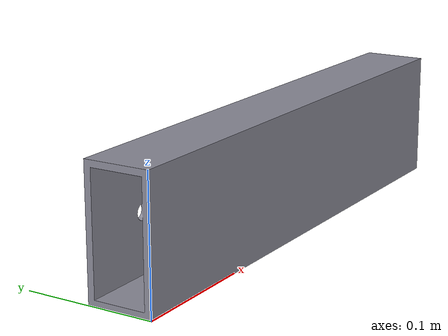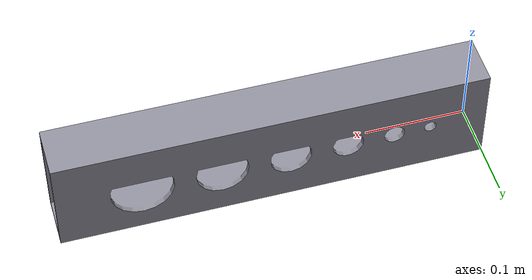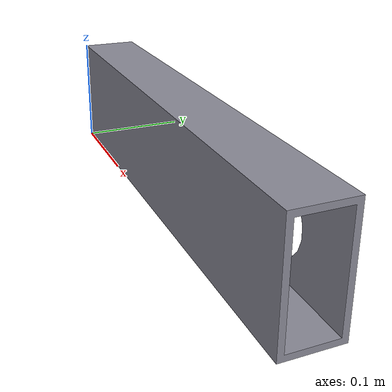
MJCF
<mujoco model="peg_holder">
  <compiler angle="radian" autolimits="true" inertiafromgeom="true"
            meshdir="../assets/gearbox" texturedir="../assets/gearbox"/>

  <asset>
    <mesh name="peg_holder" file="peg_holder_real.stl" scale="1 1 1"/>
    <material name="metal_mat" rgba="0.55 0.55 0.60 1"
              specular="0.8" shininess="0.5" reflectance="0.3"/>
  </asset>

  <worldbody>
    <body name="peg_holder">
      <freejoint name="peg_holder_joint"/>
      <geom name="peg_holder" mesh="peg_holder" type="mesh" material="metal_mat"
            condim="6" friction="0.6 0.005 0.0001"
            solimp="0.99 0.99 0.001" solref="0.01 1"/>
    </body>
  </worldbody>
</mujoco>
